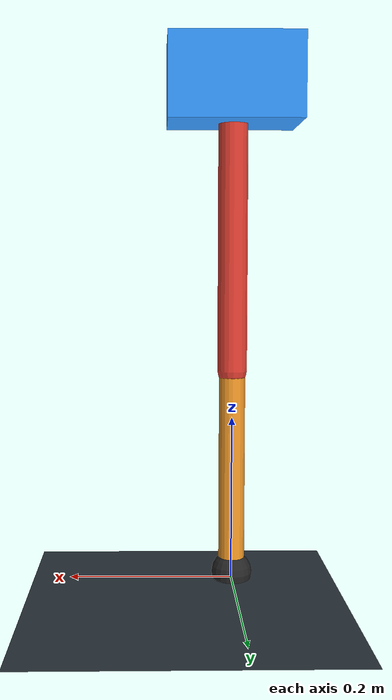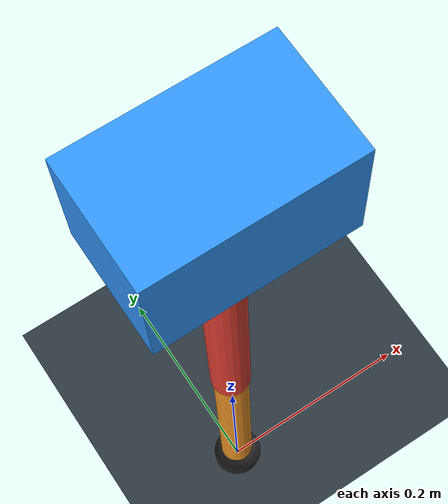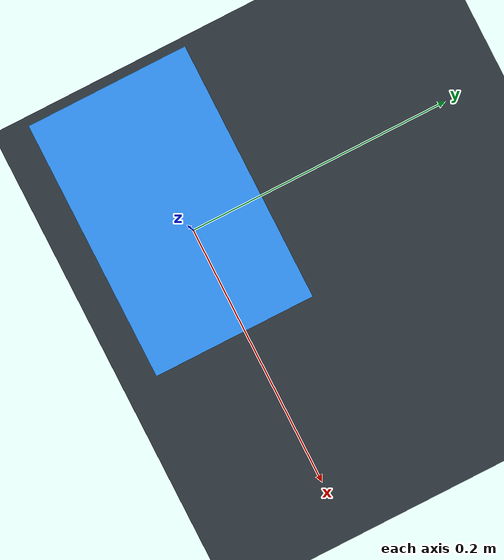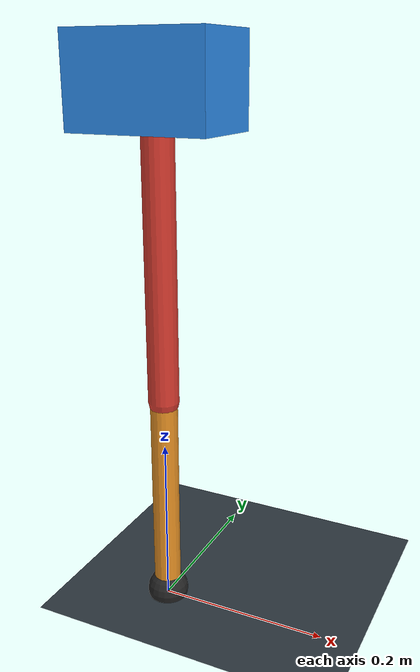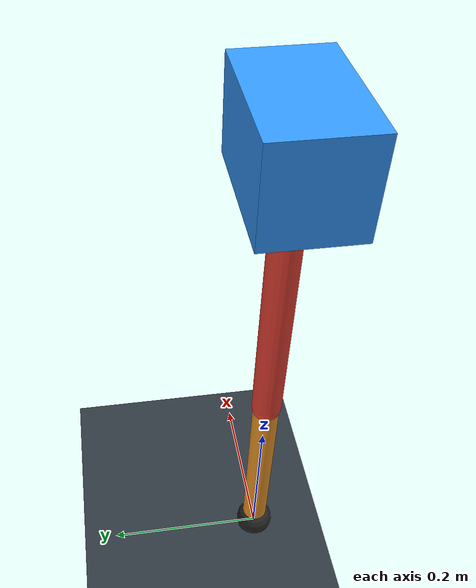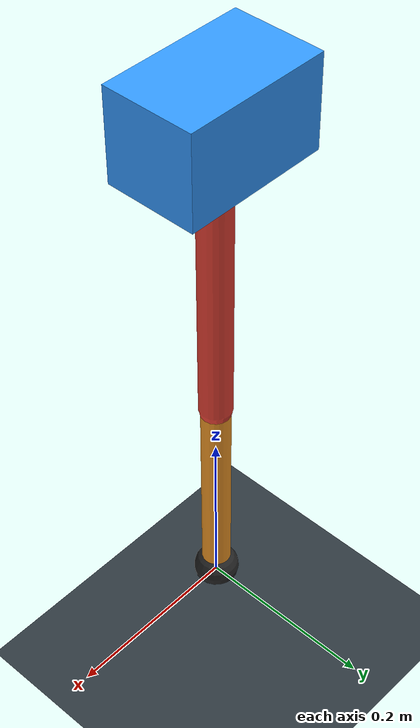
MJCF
<mujoco model="single_axis_two_bar">
  <compiler angle="radian" inertiafromgeom="true"/>
  <option timestep="0.001" integrator="implicitfast" gravity="0 0 -9.81"/>
  <default>
    <joint damping="0.08"/>
    <geom friction="1.2 0.01 0.0001" condim="3"/>
  </default>
  <worldbody>
    <geom name="floor" type="plane" size="5 5 0.1" rgba="0.18 0.22 0.25 1"/>
    <body name="carriage" pos="0 0 0.6083349012877834">
      <joint name="pole_slide" type="slide" axis="0 0 1"/>
      <geom name="payload" type="box" size="0.08 0.05 0.05" mass="2.425758440933599" rgba="0.2 0.6 1 1"/>
      <body name="thigh" pos="0 0 0">
        <joint name="hip" type="hinge" axis="0 1 0"/>
        <geom name="thigh_link" type="capsule" fromto="0 0 0 0 0 -0.34965703309450274" size="0.018" mass="0.24913525638988315" rgba="0.9 0.25 0.2 1"/>
        <body name="shank" pos="0 0 -0.34965703309450274">
          <joint name="knee" type="hinge" axis="0 1 0"/>
          <geom name="shank_link" type="capsule" fromto="0 0 0 0 0 -0.25171915380011944" size="0.016" mass="0.17935322325773959" rgba="0.95 0.6 0.15 1"/>
          <geom name="foot" type="sphere" pos="0 0 -0.25171915380011944" size="0.025" mass="0.03" rgba="0.15 0.15 0.15 1"/>
          <site name="toe" pos="0 0 -0.25171915380011944" size="0.008"/>
        </body>
      </body>
    </body>
  </worldbody>
  <actuator>
    <motor name="hip_motor" joint="hip" ctrlrange="-28.499993074357185 28.499993074357185"/>
    <motor name="knee_motor" joint="knee" ctrlrange="-105.00377198910138 105.00377198910138"/>
  </actuator>
</mujoco>
